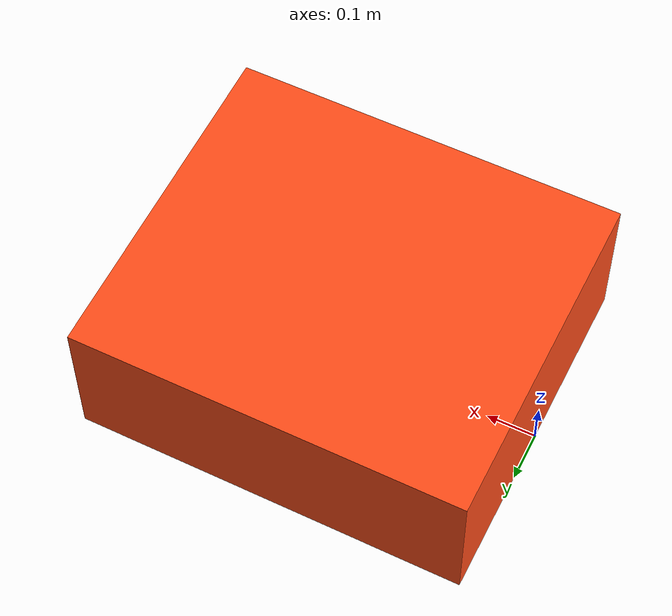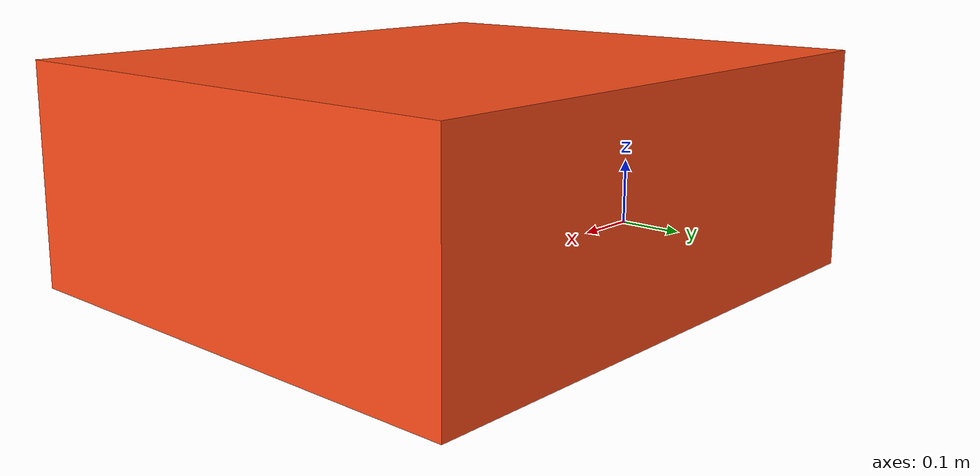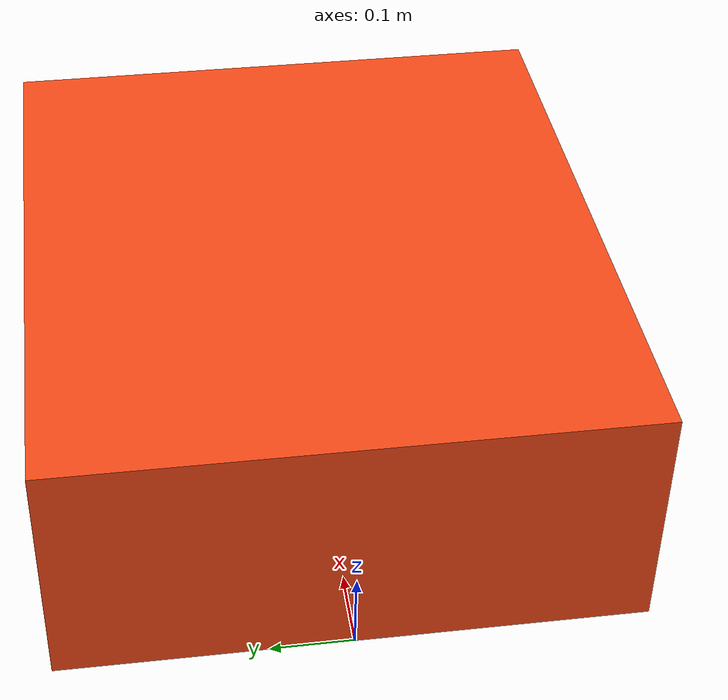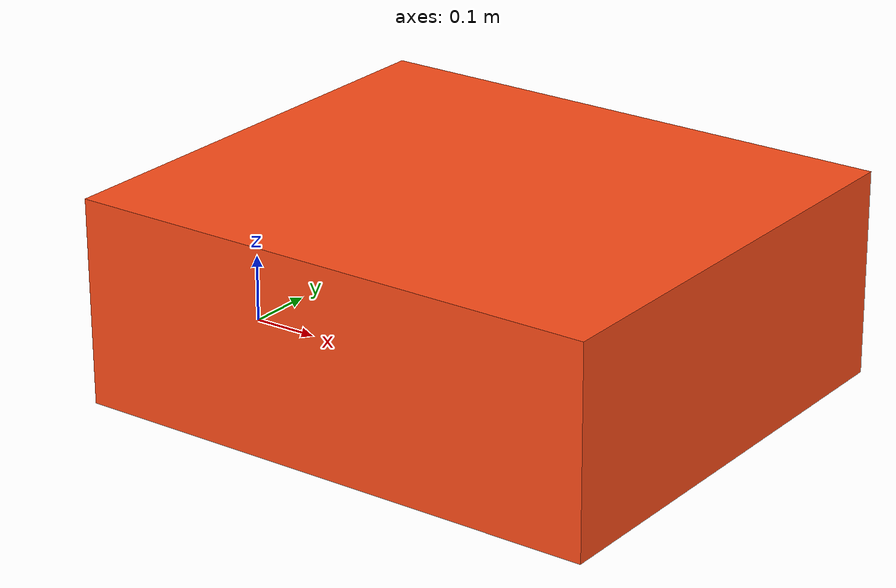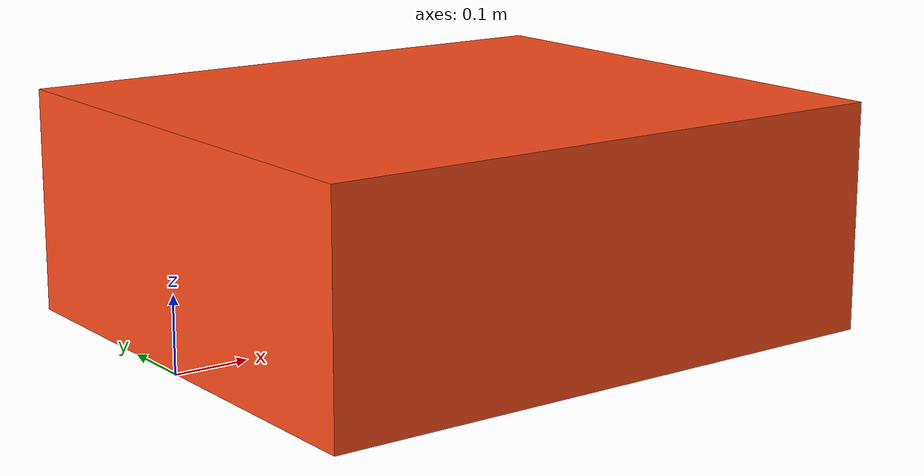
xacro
<?xml version="1.0"?>
<robot xmlns:xacro="http://www.ros.org/wiki/xacro" name="diff_robot">

    <material name="white">
        <color rgba="1 1 1 1"/>
    </material>

    <material name="orange">
        <color rgba="1 0.3 0.1 1"/>
    </material>

    <material name="blue">
        <color rgba="0.2 0.2 1 1"/>
    </material>

    <material name="black">
        <color rgba="0 0 0 1"/>
    </material>

    <material name="red">
        <color rgba="1 0 0 1"/>
    </material>

    <!-- BASE LINK -->
    <link name="base_link"></link>

    <!-- BASE FOOTPRINT JOINT -->

    <!-- BASE FOOTPRINT LINK -->

      <!-- BASE LINK JOINT -->
    <joint name="base_link_joint" type="fixed">
        <origin xyz="0.0 0.0 0.0"/>
        <parent link="base_link"/>
        <child link="chassis_link"/>
        <axis xyz="0.0 0.0 0.0"/>
    </joint>

    <link name="chassis_link">
        <visual>
            <origin xyz="0.4 0.0 0.15" rpy="0.0 0.0 0.0"/>
            <geometry>
                <box size="0.8 0.7 0.3"/>
            </geometry>
            <material name="orange"/>
        </visual>

        <collision>
            <geometry>
                <box size="0.8 0.7 0.3"/>
            </geometry>
        </collision>
    </link>

</robot>
